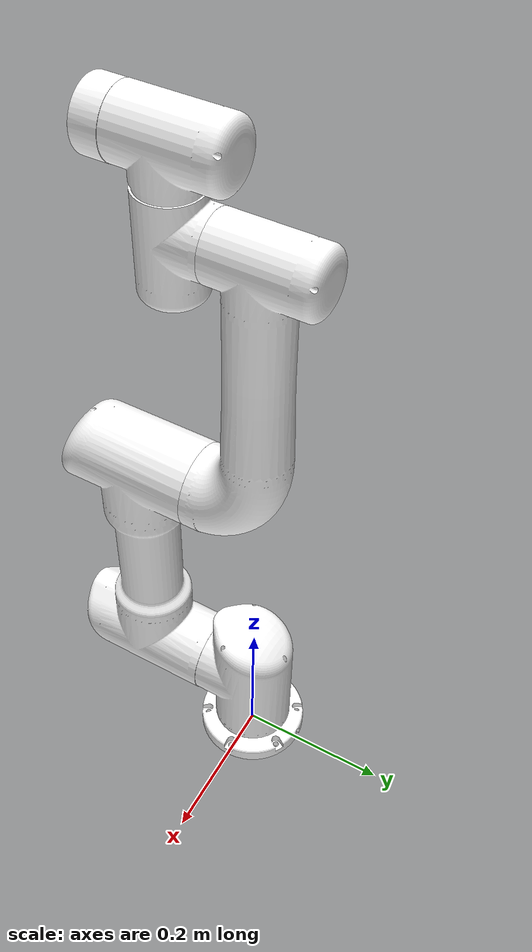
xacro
<?xml version="1.0" encoding="utf-8"?>
<robot name="probot_c800"  xmlns:xacro="http://ros.org/wiki/xacro">
  <xacro:property name="M_PI" value="3.1415926536"/>

  <link
    name="base_link">
    <inertial>
      <origin
        xyz="5.147E-06 -0.00046785 0.015896"
        rpy="0 0 0" />
      <mass
        value="46.8" />
      <inertia
        ixx="0.00059509"
        ixy="-1.4288E-07"
        ixz="2.849E-08"
        iyy="0.00060823"
        iyz="-2.5808E-06"
        izz="0.0011221" />
    </inertial>
    <visual>
      <origin
        xyz="0 0 0"
        rpy="0 0 0" />
      <geometry>
        <mesh
          filename="package://probot_description/meshes/PROBOT_C800/base_link.STL" />
      </geometry>
      <material
        name="">
        <color
          rgba="1 1 1 1" />
      </material>
    </visual>
    <collision>
      <origin
        xyz="0 0 0"
        rpy="0 0 0" />
      <geometry>
        <mesh
          filename="package://probot_description/meshes/PROBOT_C800/base_link.STL" />
      </geometry>
    </collision>
  </link>
  <link
    name="link_1">
    <inertial>
      <origin
        xyz="0.00965262287162855 0.000106882257560006 -0.0934671109139962"
        rpy="0 0 0" />
      <mass
        value="1.88922089243828" />
      <inertia
        ixx="0.00408865798627214"
        ixy="-5.96603151037548E-06"
        ixz="0.000373851909212829"
        iyy="0.00462847786874606"
        iyz="4.12539063355566E-06"
        izz="0.00336611341313754" />
    </inertial>
    <visual>
      <origin
        xyz="0 0 0"
        rpy="0 0 0" />
      <geometry>
        <mesh
          filename="package://probot_description/meshes/PROBOT_C800/link_1.STL" />
      </geometry>
      <material
        name="">
        <color
          rgba="1 1 1 1" />
      </material>
    </visual>
    <collision>
      <origin
        xyz="0 0 0"
        rpy="0 0 0" />
      <geometry>
        <mesh
          filename="package://probot_description/meshes/PROBOT_C800/link_1.STL" />
      </geometry>
    </collision>
  </link>
  <joint
    name="joint_1"
    type="revolute">
    <origin
      xyz="0 0 0.02685"
      rpy="${M_PI} 0 ${-M_PI/2}" />
    <parent
      link="base_link" />
    <child
      link="link_1" />
    <axis
      xyz="0 0 1" />
    <limit
      lower="-3"
      upper="3"
      effort="100"
      velocity="3" />
  </joint>
  <link
    name="link_2">
    <inertial>
      <origin
        xyz="0.0934750581217414 0.00103234502270023 -0.173879790200934"
        rpy="0 0 0" />
      <mass
        value="5.06786745806782" />
      <inertia
        ixx="0.0121779083694365"
        ixy="-2.80230067509799E-05"
        ixz="9.97468437098008E-10"
        iyy="0.0147149627140393"
        iyz="-8.00783289230579E-08"
        izz="0.00958972857755924" />
    </inertial>
    <visual>
      <origin
        xyz="0 0 0"
        rpy="0 0 0" />
      <geometry>
        <mesh
          filename="package://probot_description/meshes/PROBOT_C800/link_2.STL" />
      </geometry>
      <material
        name="">
        <color
          rgba="1 1 1 1" />
      </material>
    </visual>
    <collision>
      <origin
        xyz="0 0 0"
        rpy="0 0 0" />
      <geometry>
        <mesh
          filename="package://probot_description/meshes/PROBOT_C800/link_2.STL" />
      </geometry>
    </collision>
  </link>
  <joint
    name="joint_2"
    type="revolute">
    <origin
      xyz="0.06985 0.0 -0.09285"
      rpy="0 0 0" />
    <parent
      link="link_1" />
    <child
      link="link_2" />
    <axis
      xyz="1 0 0" />
    <limit
      lower="-3"
      upper="3"
      effort="100"
      velocity="3" />
  </joint>
  <link
    name="link_3">
    <inertial>
      <origin
        xyz="-0.0687118174770173 -0.000754378183272216 -0.185631913469604"
        rpy="0 0 0" />
      <mass
        value="2.47377025000813" />
      <inertia
        ixx="0.00663956391078891"
        ixy="-2.71624301134228E-06"
        ixz="-0.000251322412392862"
        iyy="0.00692970951632879"
        iyz="-2.96259292810681E-06"
        izz="0.00245054455125903" />
    </inertial>
    <visual>
      <origin
        xyz="0 0 0"
        rpy="0 0 0" />
      <geometry>
        <mesh
          filename="package://probot_description/meshes/PROBOT_C800/link_3.STL" />
      </geometry>
      <material
        name="">
        <color
          rgba="1 1 1 1" />
      </material>
    </visual>
    <collision>
      <origin
        xyz="0 0 0"
        rpy="0 0 0" />
      <geometry>
        <mesh
          filename="package://probot_description/meshes/PROBOT_C800/link_3.STL" />
      </geometry>
    </collision>
  </link>
  <joint
    name="joint_3"
    type="revolute">
    <origin
      xyz="0 0 -0.3484"
      rpy="0 0 0" />
    <parent
      link="link_2" />
    <child
      link="link_3" />
    <axis
      xyz="1 0 0" />
    <limit
      lower="-3"
      upper="3"
      effort="100"
      velocity="3" />
  </joint>
  <link
    name="link_4">
    <inertial>
      <origin
        xyz="1.42558891115018E-07 0.011406732342618 -0.041125104941559"
        rpy="0 0 0" />
      <mass
        value="0.695111684391091" />
      <inertia
        ixx="0.000790631110631163"
        ixy="1.14094804039212E-10"
        ixz="8.72089830829354E-10"
        iyy="0.000625170480739091"
        iyz="3.28279382060779E-12"
        izz="0.000711240090250443" />
    </inertial>
    <visual>
      <origin
        xyz="0 0 0"
        rpy="0 0 0" />
      <geometry>
        <mesh
          filename="package://probot_description/meshes/PROBOT_C800/link_4.STL" />
      </geometry>
      <material
        name="">
        <color
          rgba="1 1 1 1" />
      </material>
    </visual>
    <collision>
      <origin
        xyz="0 0 0"
        rpy="0 0 0" />
      <geometry>
        <mesh
          filename="package://probot_description/meshes/PROBOT_C800/link_4.STL" />
      </geometry>
    </collision>
  </link>
  <joint
    name="joint_4"
    type="revolute">
    <origin
      xyz="-0.01605 0.0 -0.3495"
      rpy="${M_PI/2} 0 ${-M_PI/2}" />
    <parent
      link="link_3" />
    <child
      link="link_4" />
    <axis
      xyz="0 0 1" />
    <limit
      lower="-3"
      upper="3"
      effort="100"
      velocity="3" />
  </joint>
  <link
    name="link_5">
    <inertial>
      <origin
        xyz="-0.0114844563632815 -0.000126834206554931 -0.0414064058202409"
        rpy="0 0 0" />
      <mass
        value="0.690365366275584" />
      <inertia
        ixx="0.000621780696658123"
        ixy="-1.82724165631366E-06"
        ixz="6.97185313514566E-12"
        iyy="0.000787203265227848"
        iyz="-1.46862677962704E-10"
        izz="0.000704470727358158" />
    </inertial>
    <visual>
      <origin
        xyz="0 0 0"
        rpy="0 0 0" />
      <geometry>
        <mesh
          filename="package://probot_description/meshes/PROBOT_C800/link_5.STL" />
      </geometry>
      <material
        name="">
        <color
          rgba="1 1 1 1" />
      </material>
    </visual>
    <collision>
      <origin
        xyz="0 0 0"
        rpy="0 0 0" />
      <geometry>
        <mesh
          filename="package://probot_description/meshes/PROBOT_C800/link_5.STL" />
      </geometry>
    </collision>
  </link>
  <joint
    name="joint_5"
    type="revolute">
    <origin
      xyz="0 -0.0541 -0.0464"
      rpy="${-M_PI/2} ${M_PI/2} 0" />
    <parent
      link="link_4" />
    <child
      link="link_5" />
    <axis
      xyz="0 0 1" />
    <limit
      lower="-3"
      upper="3"
      effort="100"
      velocity="3" />
  </joint>
  <link
    name="link_6">
    <inertial>
      <origin
        xyz="0.014970141556978 0.000165329680690855 5.42196176844811E-09"
        rpy="0 0 0" />
      <mass
        value="0.138913647701422" />
      <inertia
        ixx="0.000114113868764739"
        ixy="5.037705828088E-07"
        ixz="1.27793184454972E-11"
        iyy="6.850486862405E-05"
        iyz="-1.06418612094514E-09"
        izz="6.85002551423014E-05" />
    </inertial>
    <visual>
      <origin
        xyz="0 0 0"
        rpy="0 0 0" />
      <geometry>
        <mesh
          filename="package://probot_description/meshes/PROBOT_C800/link_6.STL" />
      </geometry>
      <material
        name="">
        <color
          rgba="1 1 1 1" />
      </material>
    </visual>
    <collision>
      <origin
        xyz="0 0 0"
        rpy="0 0 0" />
      <geometry>
        <mesh
          filename="package://probot_description/meshes/PROBOT_C800/link_6.STL" />
      </geometry>
    </collision>
  </link>
  <joint
    name="joint_6"
    type="revolute">
    <origin
      xyz="0.0501 0 -0.0464"
      rpy="0 0 0" />
    <parent
      link="link_5" />
    <child
      link="link_6" />
    <axis
      xyz="-1 0 0" />
    <limit
      lower="-3"
      upper="3"
      effort="100"
      velocity="3" />
  </joint>

  <link name="tool0"/>
  <joint name="joint_tool0" type="fixed">
    <origin xyz="0.03328 0 0" rpy="${-M_PI} 0 ${-M_PI/2}" />
    <parent link="link_6" />
    <child link="tool0" />
  </joint>

  <!-- Transmissions for ROS Control -->
  <xacro:macro name="transmission_block" params="joint_name">
    <transmission name="tran1">
      <type>transmission_interface/SimpleTransmission</type>
      <joint name="${joint_name}">
        <hardwareInterface>hardware_interface/PositionJointInterface</hardwareInterface>
      </joint>
      <actuator name="motor1">
        <hardwareInterface>hardware_interface/PositionJointInterface</hardwareInterface>
        <mechanicalReduction>1</mechanicalReduction>
      </actuator>
    </transmission>
  </xacro:macro>

  <xacro:transmission_block joint_name="joint_1"/>
  <xacro:transmission_block joint_name="joint_2"/>
  <xacro:transmission_block joint_name="joint_3"/>
  <xacro:transmission_block joint_name="joint_4"/>
  <xacro:transmission_block joint_name="joint_5"/>
  <xacro:transmission_block joint_name="joint_6"/>

  <!-- ros_control plugin -->
  <gazebo>
    <plugin name="gazebo_ros_control" filename="libgazebo_ros_control.so">
      <robotNamespace>/</robotNamespace>
      <robotSimType>gazebo_ros_control/DefaultRobotHWSim</robotSimType>
      <legacyModeNS>true</legacyModeNS>
    </plugin>
  </gazebo>
</robot>
